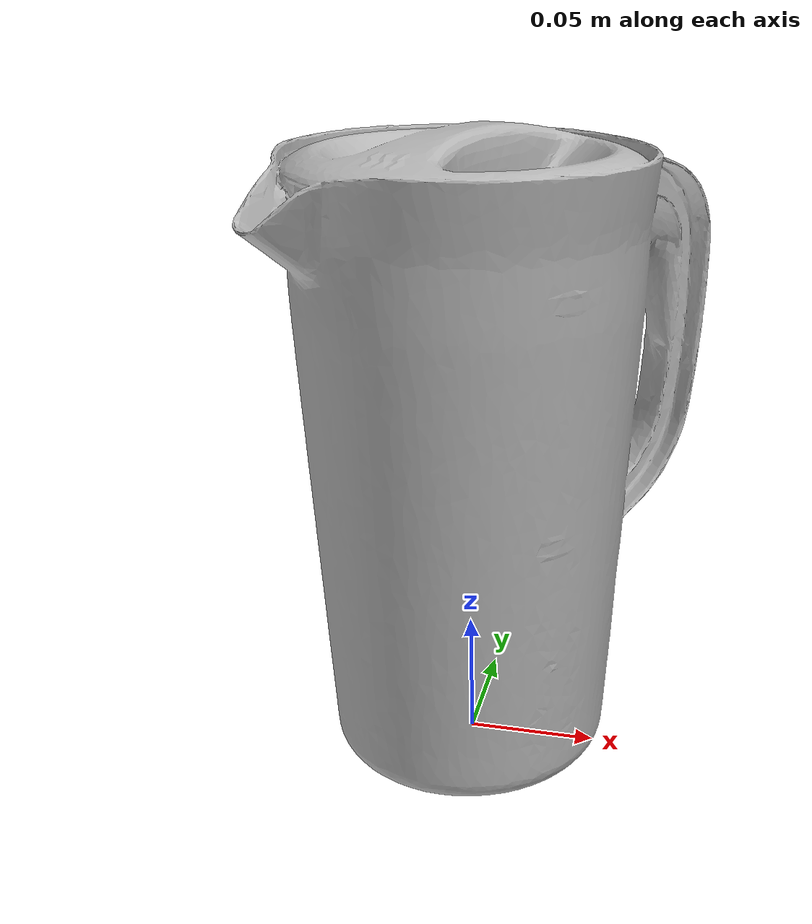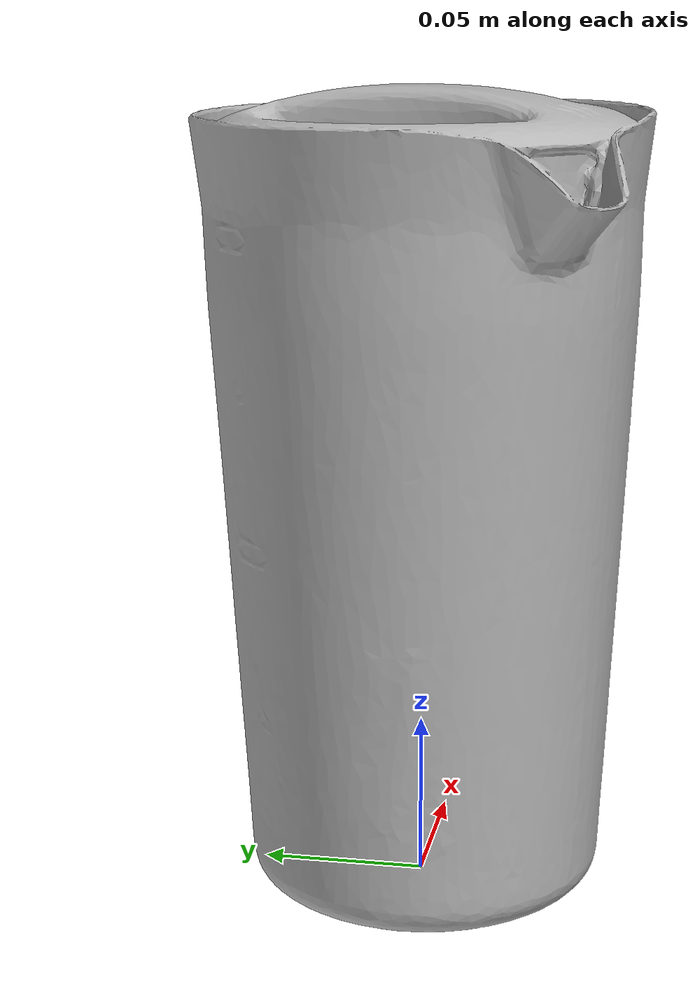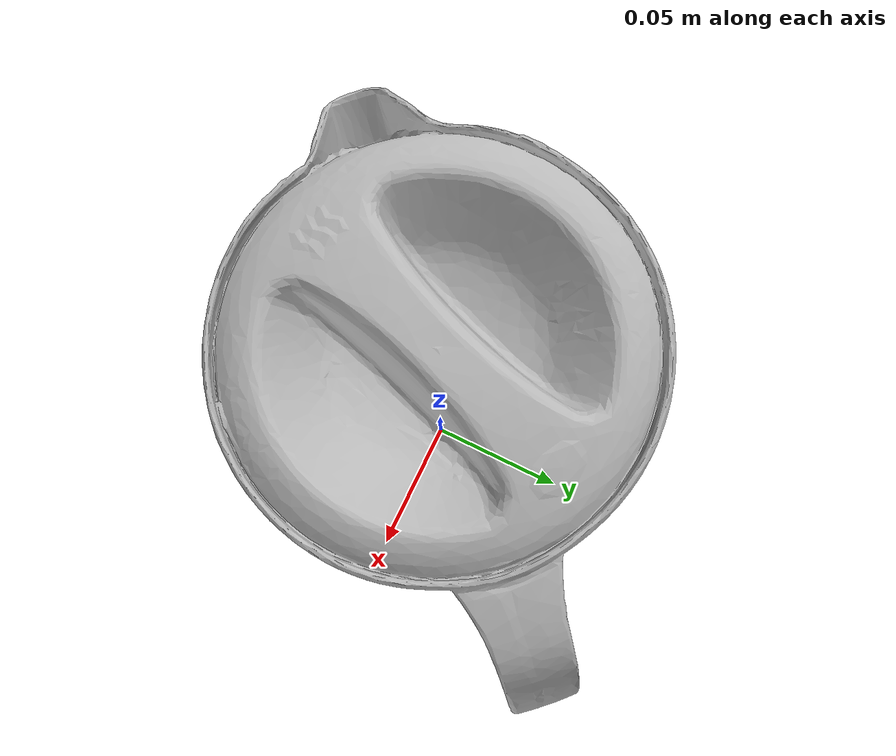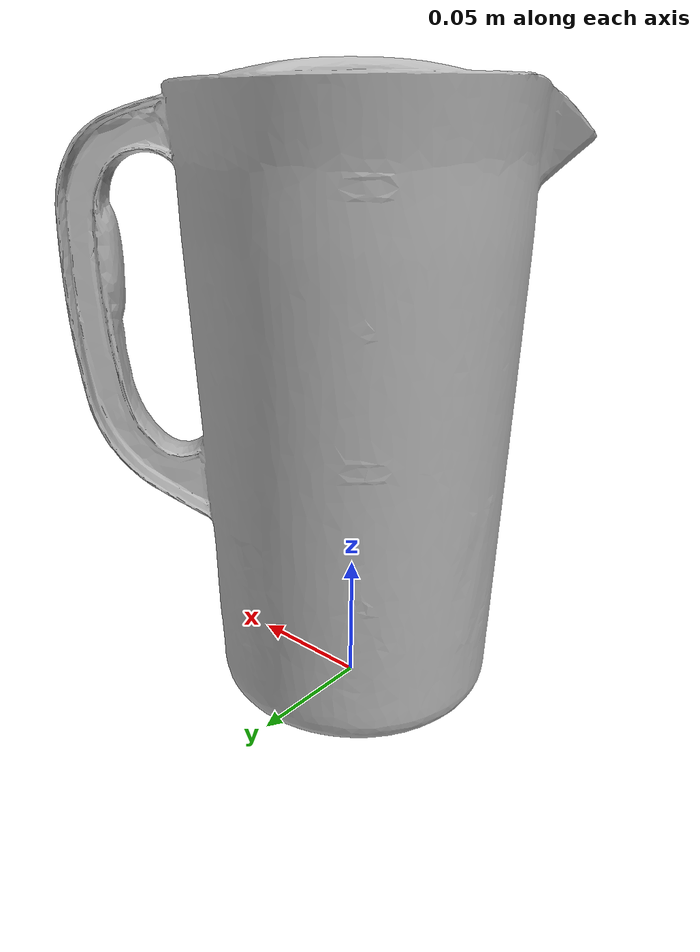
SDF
<?xml version="1.0" ?>
<sdf version='1.8'>
  <model name='ycb_019_pitcher_base'>
    <link name='body'>
      <inertial>
        <mass>0.244</mass>
        <pose>0.000208553381 -0.000416637536 0.125762248 0 0 0</pose>
        <inertia>
          <ixx>0.00127691830254</ixx>
          <ixy>-7.64926731428e-06</ixy>
          <ixz>-5.82346773991e-06</ixz>
          <iyy>0.00127829503482</iyy>
          <iyz>-1.03855183542e-05</iyz>
          <izz>0.000450321914707</izz>
        </inertia>
      </inertial>
      <visual name='ycb_019_pitcher_base_visual'>
        <pose>0.013622 -0.033894 0.003126 0 0 0</pose>
        <geometry>
          <mesh>
            <uri>model://ycb_019_pitcher_base/meshes/textured.dae</uri>
          </mesh>
        </geometry>
      </visual>
      <collision name='ycb_019_pitcher_base_collision'>
        <pose>0.013622 -0.033894 0.003126 0 0 0</pose>
        <geometry>
          <mesh>
            <uri>model://ycb_019_pitcher_base/meshes/nontextured.stl</uri>
          </mesh>
        </geometry>
        <max_contacts>10</max_contacts>
        <surface>
          <contact>
            <ode>
              <kp>1e15</kp>
              <kd>1e13</kd>
            </ode>
          </contact>
        </surface>
      </collision>
    </link>
  </model>
</sdf>
